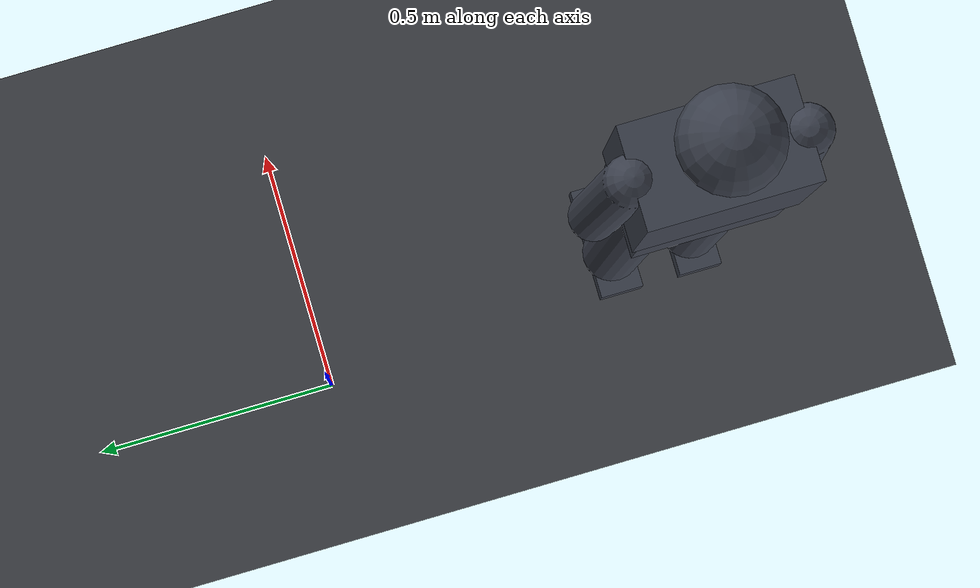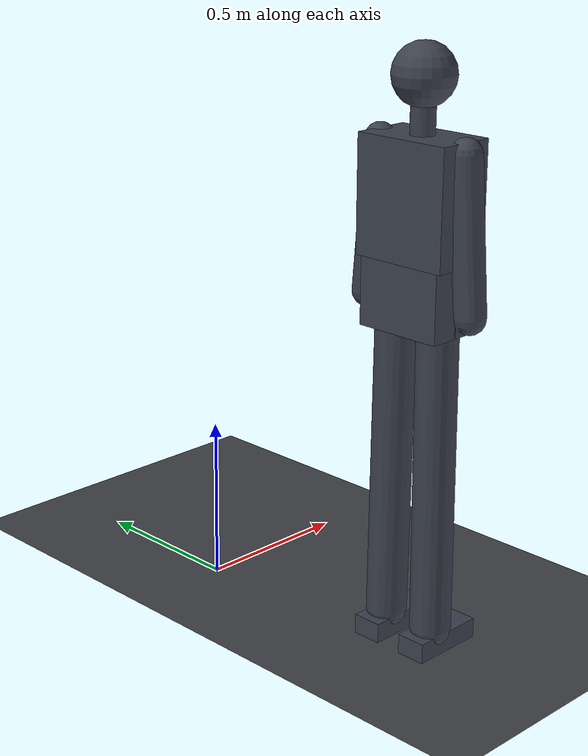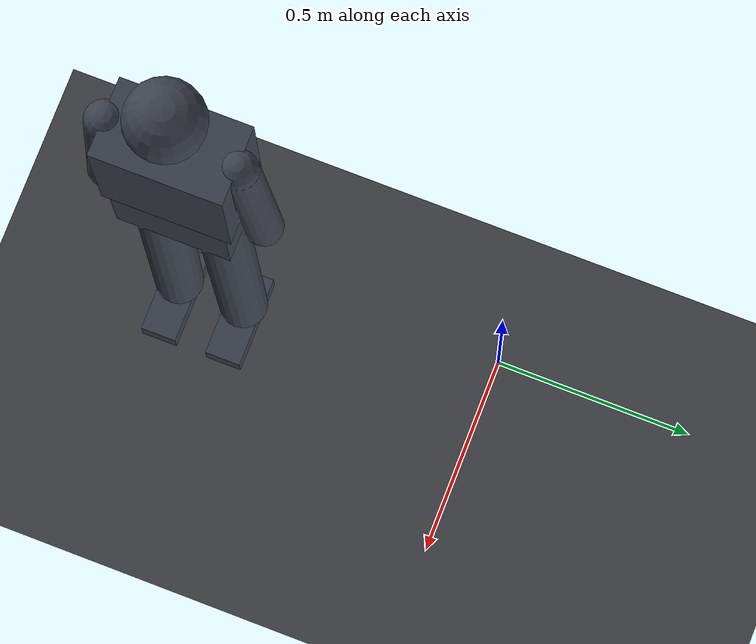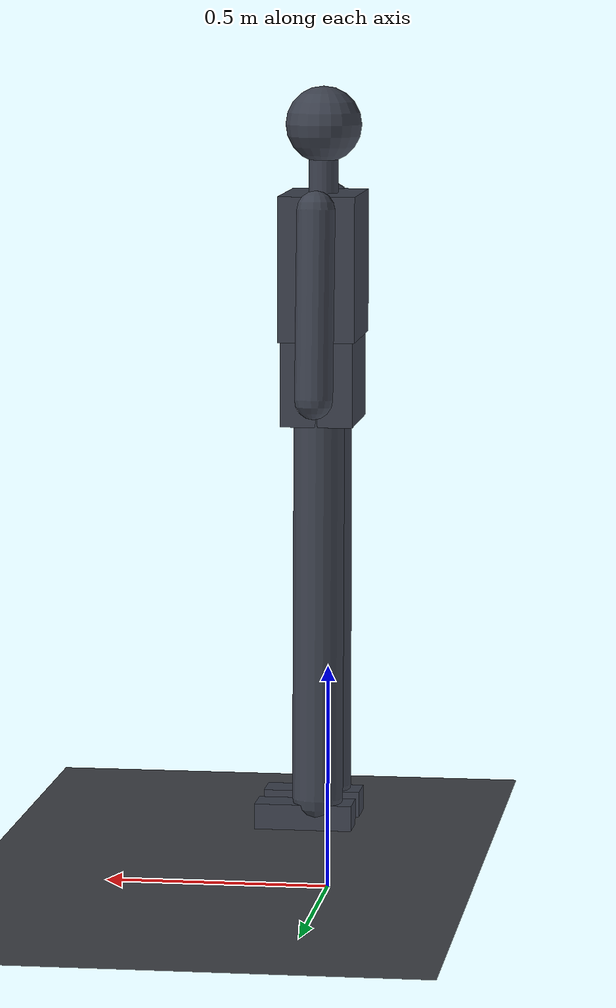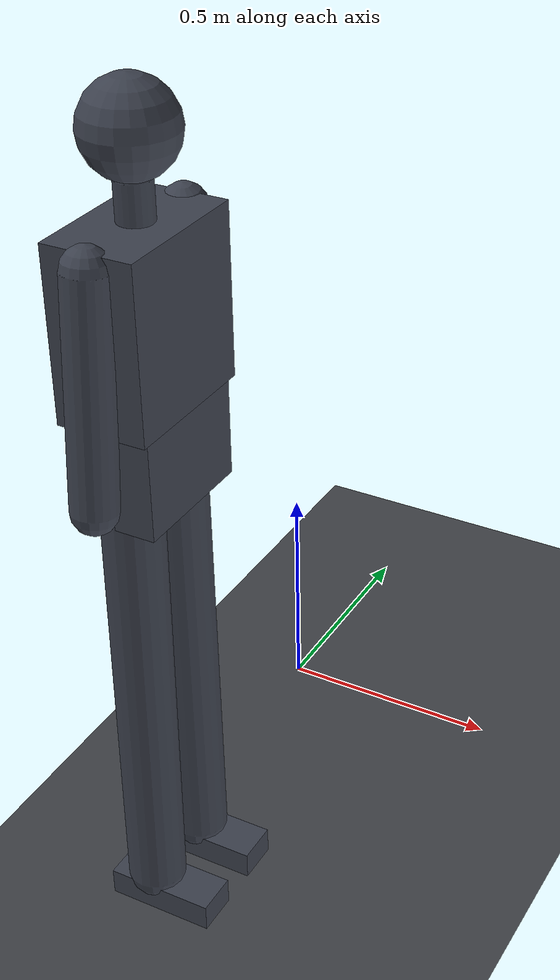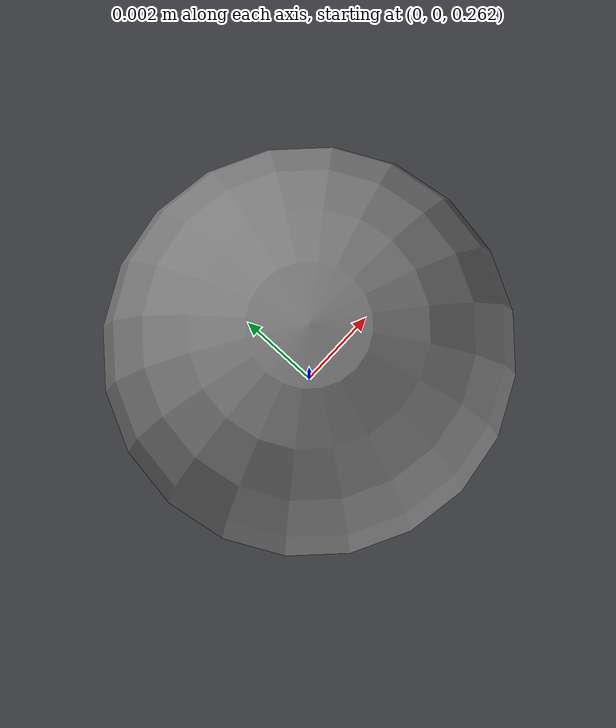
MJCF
<?xml version="1.0" encoding="utf-8"?>
<mujoco model="rsbot">
  <compiler angle="radian" autolimits="true"/>
  <option timestep="0.001" integrator="implicitfast" gravity="0 0 -9.81"/>

  <default>
    <geom friction="1.0 0.005 0.0001" solref="0.008 1" density="0"/>
    <joint damping="0.02" armature="0.002" frictionloss="0.008"/>

    <default class="servo_pos">
      <position kp="12" kv="0.35" forcerange="-2.9 2.9"/>
    </default>
    <default class="servo_vel">
      <velocity kv="0.20" forcerange="-2.9 2.9"/>
    </default>

    <default class="leg">
      <geom type="capsule" size="0.014" rgba="0.75 0.76 0.78 1"/>
    </default>
    <!-- Ankle servo block. Must sit ABOVE the axle: the wheel face is only
         12 mm below it in foot mode, so anything hanging lower becomes the
         real ground contact and steals the 80 mm foot. -->
    <default class="ankle">
      <geom type="box" size="0.015 0.014 0.017" pos="0 0 0.020"
            rgba="0.85 0.35 0.15 1"/>
    </default>
    <!-- The tyre is the foot, so it needs grip in both roles. -->
    <default class="wheel">
      <geom type="cylinder" size="0.040 0.012" friction="1.6 0.02 0.002"
            rgba="0.15 0.15 0.17 1"/>
    </default>
  </default>

  <visual>
    <global offwidth="1920" offheight="1080"/>
    <quality shadowsize="4096"/>
    <headlight ambient="0.45 0.45 0.45" diffuse="0.55 0.55 0.55" specular="0.1 0.1 0.1"/>
    <map znear="0.02" zfar="30"/>
  </visual>

  <asset>
    <texture name="grid" type="2d" builtin="checker" width="512" height="512"
             rgb1="0.22 0.23 0.25" rgb2="0.28 0.29 0.31"/>
    <material name="grid" texture="grid" texrepeat="12 12" reflectance="0.05"/>
    <!--MESHES-->
  </asset>

  <worldbody>
    <light pos="0 0 2" dir="0 0 -1" diffuse="0.7 0.7 0.7"/>
    <geom name="floor" type="plane" size="0 0 0.05" material="grid"
          friction="1.0 0.005 0.0001"/>

    <!-- 1.75 m (5 ft 9 in) human, visual only, for scale. The robot drives
         past it in the render. -->
    <body name="human" pos="0.10 -0.72 0">
      <geom name="h_head" type="sphere" size="0.090" pos="0 0 1.660"
            rgba="0.24 0.26 0.31 1" contype="0" conaffinity="0" mass="0"/>
      <geom name="h_neck" type="capsule" size="0.035" fromto="0 0 1.500 0 0 1.575"
            rgba="0.24 0.26 0.31 1" contype="0" conaffinity="0" mass="0"/>
      <geom name="h_torso" type="box" size="0.090 0.150 0.170" pos="0 0 1.330"
            rgba="0.24 0.26 0.31 1" contype="0" conaffinity="0" mass="0"/>
      <geom name="h_hips" type="box" size="0.085 0.135 0.100" pos="0 0 1.060"
            rgba="0.24 0.26 0.31 1" contype="0" conaffinity="0" mass="0"/>
      <geom name="h_arm_l" type="capsule" size="0.045" fromto="0 0.150 1.470 0 0.185 1.030"
            rgba="0.24 0.26 0.31 1" contype="0" conaffinity="0" mass="0"/>
      <geom name="h_arm_r" type="capsule" size="0.045" fromto="0 -0.150 1.470 0 -0.185 1.030"
            rgba="0.24 0.26 0.31 1" contype="0" conaffinity="0" mass="0"/>
      <geom name="h_leg_l" type="capsule" size="0.060" fromto="0 0.075 1.000 0 0.085 0.070"
            rgba="0.24 0.26 0.31 1" contype="0" conaffinity="0" mass="0"/>
      <geom name="h_leg_r" type="capsule" size="0.060" fromto="0 -0.075 1.000 0 -0.085 0.070"
            rgba="0.24 0.26 0.31 1" contype="0" conaffinity="0" mass="0"/>
      <geom name="h_foot_l" type="box" size="0.115 0.045 0.030" pos="0.030 0.085 0.030"
            rgba="0.24 0.26 0.31 1" contype="0" conaffinity="0" mass="0"/>
      <geom name="h_foot_r" type="box" size="0.115 0.045 0.030" pos="0.030 -0.085 0.030"
            rgba="0.24 0.26 0.31 1" contype="0" conaffinity="0" mass="0"/>
    </body>

    <body name="torso" pos="0 0 0.247">
      <freejoint name="root"/>
      <!--TORSO_INERTIAL-->
      <geom name="torso" type="box" size="0.045 0.035 0.090" pos="0.0085 0 0.090"
            rgba="0.30 0.55 0.85 1" group="4"/>
      <site name="imu" pos="0 0 0.02"/>
      <!--TORSO_VIS-->

      <!--LEGS-->
    </body>
  </worldbody>

  <!--EXCLUDES-->

  <actuator>
    <position class="servo_pos" name="hip_l"   joint="hip_l"   ctrlrange="-0.60 1.40"/>
    <position class="servo_pos" name="knee_l"  joint="knee_l"  ctrlrange="-2.00 0.05"/>
    <position class="servo_pos" name="aroll_l" joint="ankle_roll_l"  ctrlrange="-0.10 1.75"/>
    <velocity class="servo_vel" name="wheel_l" joint="wheel_l" ctrlrange="-40 40"/>

    <position class="servo_pos" name="hip_r"   joint="hip_r"   ctrlrange="-0.60 1.40"/>
    <position class="servo_pos" name="knee_r"  joint="knee_r"  ctrlrange="-2.00 0.05"/>
    <position class="servo_pos" name="aroll_r" joint="ankle_roll_r"  ctrlrange="-0.10 1.75"/>
    <velocity class="servo_vel" name="wheel_r" joint="wheel_r" ctrlrange="-40 40"/>
  </actuator>

  <sensor>
    <framequat     name="imu_quat"  objtype="site" objname="imu"/>
    <gyro          name="imu_gyro"  site="imu"/>
    <accelerometer name="imu_acc"   site="imu"/>
    <jointpos name="aroll_l_pos" joint="ankle_roll_l"/>
    <jointvel name="wheel_l_vel" joint="wheel_l"/>
    <jointpos name="aroll_r_pos" joint="ankle_roll_r"/>
    <jointvel name="wheel_r_vel" joint="wheel_r"/>
  </sensor>

  <keyframe>
    <key name="stance"
         qpos="0 0 0.247 1 0 0 0   0.35 -0.70 0.35 0 0   0.35 -0.70 0.35 0 0"
         ctrl="0.35 -0.70 0 0   0.35 -0.70 0 0"/>
  </keyframe>
</mujoco>
